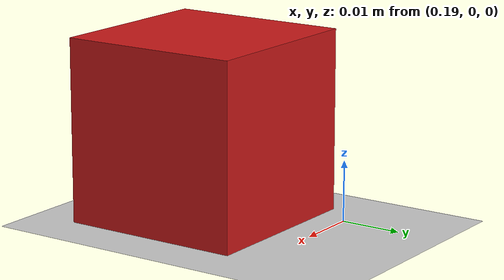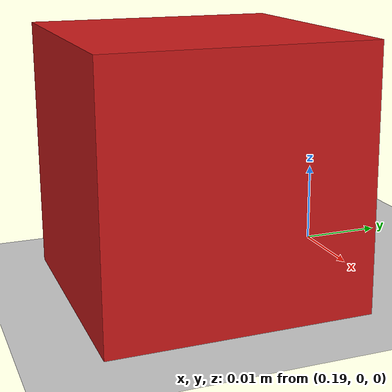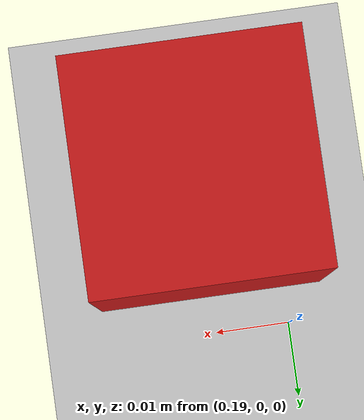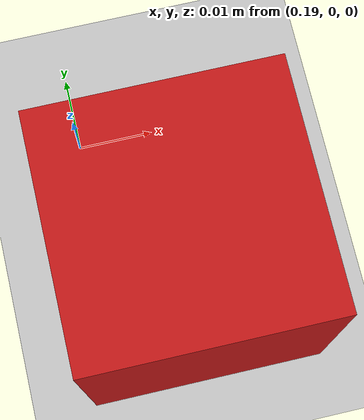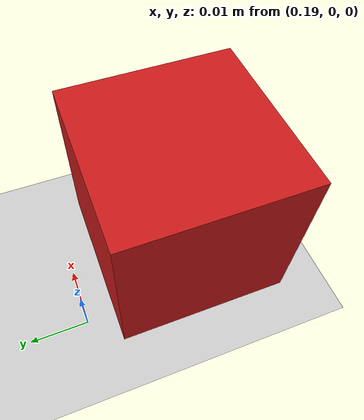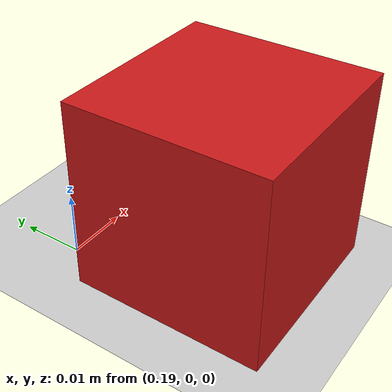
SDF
<?xml version="1.0" ?>
<sdf version="1.8">
  <world name="pick_world">

    <!-- Physics -->
    <physics name="1ms" type="ignored">
      <max_step_size>0.001</max_step_size>
      <real_time_factor>1.0</real_time_factor>
    </physics>

    <!-- Required Gazebo Harmonic plugins -->
    <plugin filename="gz-sim-physics-system"
            name="gz::sim::systems::Physics"/>
    <plugin filename="gz-sim-scene-broadcaster-system"
            name="gz::sim::systems::SceneBroadcaster"/>
    <plugin filename="gz-sim-user-commands-system"
            name="gz::sim::systems::UserCommands"/>
    <plugin filename="gz-sim-sensors-system"
            name="gz::sim::systems::Sensors">
      <render_engine>ogre2</render_engine>
    </plugin>

    <!-- Sun light -->
    <light name="sun" type="directional">
      <cast_shadows>true</cast_shadows>
      <pose>0 0 10 0 0 0</pose>
      <diffuse>0.8 0.8 0.8 1</diffuse>
      <specular>0.2 0.2 0.2 1</specular>
      <direction>-0.5 0.1 -0.9</direction>
    </light>

    <!-- Ground plane -->
    <model name="ground_plane">
      <static>true</static>
      <link name="link">
        <collision name="collision">
          <geometry>
            <plane>
              <normal>0 0 1</normal>
              <size>10 10</size>
            </plane>
          </geometry>
          <surface>
            <friction>
              <ode>
                <mu>1.0</mu>
                <mu2>1.0</mu2>
              </ode>
            </friction>
          </surface>
        </collision>
        <visual name="visual">
          <geometry>
            <plane>
              <normal>0 0 1</normal>
              <size>10 10</size>
            </plane>
          </geometry>
          <material>
            <ambient>0.8 0.8 0.8 1</ambient>
            <diffuse>0.8 0.8 0.8 1</diffuse>
          </material>
        </visual>
      </link>
    </model>

    <model name="pick_cube">
      <pose>0.20 -0.02 0.015 0 0 0</pose>
      <link name="link">
        <inertial>
          <mass>0.05</mass>
          <inertia>
            <ixx>7.5e-6</ixx>
            <ixy>0</ixy>
            <ixz>0</ixz>
            <iyy>7.5e-6</iyy>
            <iyz>0</iyz>
            <izz>7.5e-6</izz>
          </inertia>
        </inertial>
        <collision name="collision">
          <geometry>
            <box>
              <size>0.03 0.03 0.03</size>
            </box>
          </geometry>
          <surface>
            <friction>
              <ode>
                <mu>1.0</mu>
                <mu2>1.0</mu2>
              </ode>
            </friction>
          </surface>
        </collision>
        <visual name="visual">
          <geometry>
            <box>
              <size>0.03 0.03 0.03</size>
            </box>
          </geometry>
          <material>
            <ambient>0.8 0.1 0.1 1</ambient>
            <diffuse>0.8 0.1 0.1 1</diffuse>
            <specular>0.3 0.3 0.3 1</specular>
          </material>
        </visual>
      </link>
    </model>

  </world>
</sdf>
